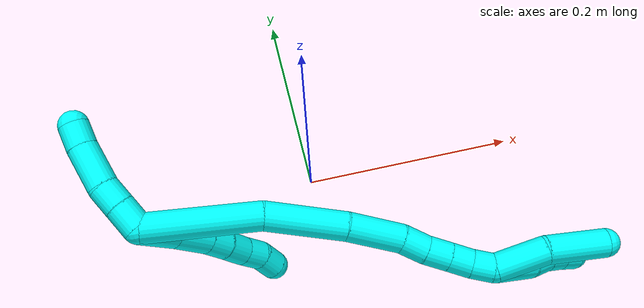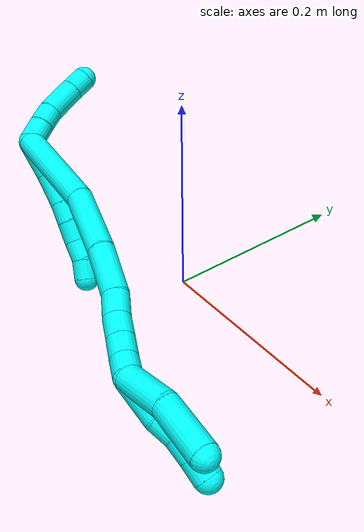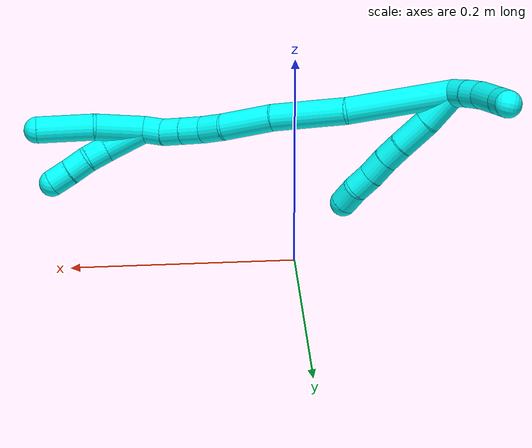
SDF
<sdf version="1.7">
 <world name="default">
  <model name="photoneo_s_sensor">
   <static>1</static>
   <pose>0 0 2 1.57079 1.57079 3.14159</pose>
   <link name="link">
    <inertial><mass>0.1</mass></inertial>
    <sensor name="sensor" type="depth">
     <update_rate>30</update_rate>
     <camera>
      <horizontal_fov>1.22</horizontal_fov>
      <image><width>1920</width><height>1200</height><format>B8G8R8</format></image>
      <clip><near>0.1</near><far>4</far></clip>
      <depth_camera><output>points</output></depth_camera>
     </camera>
     <plugin name="camera_plugin" filename="libgazebo_ros_depth_camera.so">
      <baseline>0.2</baseline>
      <alwaysOn>1</alwaysOn>
      <updateRate>0.0</updateRate>
      <cameraName>camera_ir</cameraName>
      <imageTopicName>/camera/color/image_raw</imageTopicName>
      <cameraInfoTopicName>/camera/color/camera_info</cameraInfoTopicName>
      <depthImageTopicName>/camera/depth/image_raw</depthImageTopicName>
      <depthImageCameraInfoTopicName>/camera/depth/camera_info</depthImageCameraInfoTopicName>
      <pointCloudTopicName>/camera/depth/points</pointCloudTopicName>
      <frameName>fr_optical</frameName>
      <pointCloudCutoff>0.1</pointCloudCutoff>
      <pointCloudCutoffMax>2.0</pointCloudCutoffMax>
      <distortionK1>0</distortionK1>
      <distortionK2>0</distortionK2>
      <distortionK3>0</distortionK3>
      <distortionT1>0</distortionT1>
      <distortionT2>0</distortionT2>
      <CxPrime>0</CxPrime>
      <Cx>0</Cx>
      <Cy>0</Cy>
      <focalLength>0</focalLength>
      <hackBaseline>0</hackBaseline>
     </plugin>
    </sensor>
   </link>
  </model>
  <model name="bin">
   <static>1</static>
   <link name="bottom">
    <collision name="collision-bottom">
     <pose>0 0 -0.01 0 -0 0</pose>
     <geometry><box><size>0.8 0.6 0.02</size></box></geometry>
     <surface>
      <friction><ode><mu>100</mu><mu2>100</mu2></ode></friction>
      <contact><collide_bitmask>65535</collide_bitmask></contact>
     </surface>
    </collision>
   </link>
   <link name="west_wall">
    <collision name="collision-west_wall">
     <pose>-0.41 0 0.1 0 -0 0</pose>
     <geometry><box><size>0.02 0.6 0.2</size></box></geometry>
     <surface>
      <friction><ode><mu>100</mu><mu2>100</mu2></ode></friction>
      <contact><collide_bitmask>65535</collide_bitmask></contact>
     </surface>
    </collision>
   </link>
   <link name="east_wall">
    <collision name="collision-east_wall">
     <pose>0.41 0 0.1 0 -0 0</pose>
     <geometry><box><size>0.02 0.6 0.2</size></box></geometry>
     <surface>
      <friction><ode><mu>100</mu><mu2>100</mu2></ode></friction>
      <contact><collide_bitmask>65535</collide_bitmask></contact>
     </surface>
    </collision>
   </link>
   <link name="south_wall">
    <collision name="collision-south_wall">
     <pose>0 -0.31 0.1 0 -0 0</pose>
     <geometry><box><size>0.8 0.02 0.2</size></box></geometry>
     <surface>
      <friction><ode><mu>100</mu><mu2>100</mu2></ode></friction>
      <contact><collide_bitmask>65535</collide_bitmask></contact>
     </surface>
    </collision>
   </link>
   <link name="north_wall">
    <collision name="collision-north_wall">
     <pose>0 0.31 0.1 0 -0 0</pose>
     <geometry><box><size>0.8 0.02 0.2</size></box></geometry>
     <surface>
      <friction><ode><mu>100</mu><mu2>100</mu2></ode></friction>
      <contact><collide_bitmask>65535</collide_bitmask></contact>
     </surface>
    </collision>
   </link>
  </model>
  <model name="3">
   <static>0</static>
   <link name="3">
    <collision name="collision-cylinder-e_1_2_8">
     <pose>0.012709 0.009566 0.008769 -0.828827 0.774953 -0.35526</pose>
     <geometry><cylinder><radius>0.0125</radius><length>0.036327</length></cylinder></geometry>
     <surface>
      <friction><ode><mu>1.16</mu><mu2>1.16</mu2><slip1>0</slip1><slip2>0</slip2></ode></friction>
      <contact><ode><kp>1e+06</kp><kd>1</kd><max_vel>0</max_vel><min_depth>0.001</min_depth></ode></contact>
     </surface>
    </collision>
    <visual name="visual-cylinder-e_1_2_8">
     <pose>0.012709 0.009566 0.008769 -0.828827 0.774953 -0.35526</pose>
     <geometry><cylinder><radius>0.0125</radius><length>0.036327</length></cylinder></geometry>
     <material><ambient>0.003922 1 0.996078 1</ambient></material>
    </visual>
    <collision name="collision-cylinder-e_2_8_9">
     <pose>0.036829 0.026009 0.026573 -0.650671 0.787899 -0.278619</pose>
     <geometry><cylinder><radius>0.0125</radius><length>0.032196</length></cylinder></geometry>
     <surface>
      <friction><ode><mu>1.16</mu><mu2>1.16</mu2><slip1>0</slip1><slip2>0</slip2></ode></friction>
      <contact><ode><kp>1e+06</kp><kd>1</kd><max_vel>0</max_vel><min_depth>0.001</min_depth></ode></contact>
     </surface>
    </collision>
    <visual name="visual-cylinder-e_2_8_9">
     <pose>0.036829 0.026009 0.026573 -0.650671 0.787899 -0.278619</pose>
     <geometry><cylinder><radius>0.0125</radius><length>0.032196</length></cylinder></geometry>
     <material><ambient>0.003922 1 0.996078 1</ambient></material>
    </visual>
    <collision name="collision-cylinder-e_3_9_10">
     <pose>0.05612 0.036651 0.040888 -0.619153 0.882158 -0.299747</pose>
     <geometry><cylinder><radius>0.0125</radius><length>0.02041</length></cylinder></geometry>
     <surface>
      <friction><ode><mu>1.16</mu><mu2>1.16</mu2><slip1>0</slip1><slip2>0</slip2></ode></friction>
      <contact><ode><kp>1e+06</kp><kd>1</kd><max_vel>0</max_vel><min_depth>0.001</min_depth></ode></contact>
     </surface>
    </collision>
    <visual name="visual-cylinder-e_3_9_10">
     <pose>0.05612 0.036651 0.040888 -0.619153 0.882158 -0.299747</pose>
     <geometry><cylinder><radius>0.0125</radius><length>0.02041</length></cylinder></geometry>
     <material><ambient>0.003922 1 0.996078 1</ambient></material>
    </visual>
    <collision name="collision-cylinder-e_4_10_11">
     <pose>0.072333 0.044596 0.050905 -0.72349 0.922148 -0.371628</pose>
     <geometry><cylinder><radius>0.0125</radius><length>0.020915</length></cylinder></geometry>
     <surface>
      <friction><ode><mu>1.16</mu><mu2>1.16</mu2><slip1>0</slip1><slip2>0</slip2></ode></friction>
      <contact><ode><kp>1e+06</kp><kd>1</kd><max_vel>0</max_vel><min_depth>0.001</min_depth></ode></contact>
     </surface>
    </collision>
    <visual name="visual-cylinder-e_4_10_11">
     <pose>0.072333 0.044596 0.050905 -0.72349 0.922148 -0.371628</pose>
     <geometry><cylinder><radius>0.0125</radius><length>0.020915</length></cylinder></geometry>
     <material><ambient>0.003922 1 0.996078 1</ambient></material>
    </visual>
    <collision name="collision-cylinder-e_5_11_12">
     <pose>0.088146 0.05261 0.061127 -0.60947 0.840878 -0.279422</pose>
     <geometry><cylinder><radius>0.0125</radius><length>0.020072</length></cylinder></geometry>
     <surface>
      <friction><ode><mu>1.16</mu><mu2>1.16</mu2><slip1>0</slip1><slip2>0</slip2></ode></friction>
      <contact><ode><kp>1e+06</kp><kd>1</kd><max_vel>0</max_vel><min_depth>0.001</min_depth></ode></contact>
     </surface>
    </collision>
    <visual name="visual-cylinder-e_5_11_12">
     <pose>0.088146 0.05261 0.061127 -0.60947 0.840878 -0.279422</pose>
     <geometry><cylinder><radius>0.0125</radius><length>0.020072</length></cylinder></geometry>
     <material><ambient>0.003922 1 0.996078 1</ambient></material>
    </visual>
    <collision name="collision-cylinder-e_6_12_6">
     <pose>0.104656 0.058655 0.070399 -0.529325 1.11879 -0.336174</pose>
     <geometry><cylinder><radius>0.0125</radius><length>0.02008</length></cylinder></geometry>
     <surface>
      <friction><ode><mu>1.16</mu><mu2>1.16</mu2><slip1>0</slip1><slip2>0</slip2></ode></friction>
      <contact><ode><kp>1e+06</kp><kd>1</kd><max_vel>0</max_vel><min_depth>0.001</min_depth></ode></contact>
     </surface>
    </collision>
    <visual name="visual-cylinder-e_6_12_6">
     <pose>0.104656 0.058655 0.070399 -0.529325 1.11879 -0.336174</pose>
     <geometry><cylinder><radius>0.0125</radius><length>0.02008</length></cylinder></geometry>
     <material><ambient>0.003922 1 0.996078 1</ambient></material>
    </visual>
    <collision name="collision-cylinder-e_1_2_13">
     <pose>-0.008311 0.005442 -0.005623 -2.37256 -0.8155 1.63604</pose>
     <geometry><cylinder><radius>0.0125</radius><length>0.022829</length></cylinder></geometry>
     <surface>
      <friction><ode><mu>1.16</mu><mu2>1.16</mu2><slip1>0</slip1><slip2>0</slip2></ode></friction>
      <contact><ode><kp>1e+06</kp><kd>1</kd><max_vel>0</max_vel><min_depth>0.001</min_depth></ode></contact>
     </surface>
    </collision>
    <visual name="visual-cylinder-e_1_2_13">
     <pose>-0.008311 0.005442 -0.005623 -2.37256 -0.8155 1.63604</pose>
     <geometry><cylinder><radius>0.0125</radius><length>0.022829</length></cylinder></geometry>
     <material><ambient>0.003922 1 0.996078 1</ambient></material>
    </visual>
    <collision name="collision-cylinder-e_2_13_14">
     <pose>-0.023723 0.016065 -0.016424 -2.35585 -0.769861 1.54816</pose>
     <geometry><cylinder><radius>0.0125</radius><length>0.020406</length></cylinder></geometry>
     <surface>
      <friction><ode><mu>1.16</mu><mu2>1.16</mu2><slip1>0</slip1><slip2>0</slip2></ode></friction>
      <contact><ode><kp>1e+06</kp><kd>1</kd><max_vel>0</max_vel><min_depth>0.001</min_depth></ode></contact>
     </surface>
    </collision>
    <visual name="visual-cylinder-e_2_13_14">
     <pose>-0.023723 0.016065 -0.016424 -2.35585 -0.769861 1.54816</pose>
     <geometry><cylinder><radius>0.0125</radius><length>0.020406</length></cylinder></geometry>
     <material><ambient>0.003922 1 0.996078 1</ambient></material>
    </visual>
    <collision name="collision-cylinder-e_3_14_15">
     <pose>-0.043548 0.032839 -0.028017 -2.07626 -0.765169 1.19794</pose>
     <geometry><cylinder><radius>0.0125</radius><length>0.036737</length></cylinder></geometry>
     <surface>
      <friction><ode><mu>1.16</mu><mu2>1.16</mu2><slip1>0</slip1><slip2>0</slip2></ode></friction>
      <contact><ode><kp>1e+06</kp><kd>1</kd><max_vel>0</max_vel><min_depth>0.001</min_depth></ode></contact>
     </surface>
    </collision>
    <visual name="visual-cylinder-e_3_14_15">
     <pose>-0.043548 0.032839 -0.028017 -2.07626 -0.765169 1.19794</pose>
     <geometry><cylinder><radius>0.0125</radius><length>0.036737</length></cylinder></geometry>
     <material><ambient>0.003922 1 0.996078 1</ambient></material>
    </visual>
    <collision name="collision-cylinder-e_4_15_5">
     <pose>-0.063524 0.0509 -0.036844 -1.92767 -0.810054 1.10624</pose>
     <geometry><cylinder><radius>0.0125</radius><length>0.020028</length></cylinder></geometry>
     <surface>
      <friction><ode><mu>1.16</mu><mu2>1.16</mu2><slip1>0</slip1><slip2>0</slip2></ode></friction>
      <contact><ode><kp>1e+06</kp><kd>1</kd><max_vel>0</max_vel><min_depth>0.001</min_depth></ode></contact>
     </surface>
    </collision>
    <visual name="visual-cylinder-e_4_15_5">
     <pose>-0.063524 0.0509 -0.036844 -1.92767 -0.810054 1.10624</pose>
     <geometry><cylinder><radius>0.0125</radius><length>0.020028</length></cylinder></geometry>
     <material><ambient>0.003922 1 0.996078 1</ambient></material>
    </visual>
    <collision name="collision-cylinder-e_1_2_16">
     <pose>0.01402 0.011108 0.045668 -0.238591 0.28989 -0.034989</pose>
     <geometry><cylinder><radius>0.0125</radius><length>0.098092</length></cylinder></geometry>
     <surface>
      <friction><ode><mu>1.16</mu><mu2>1.16</mu2><slip1>0</slip1><slip2>0</slip2></ode></friction>
      <contact><ode><kp>1e+06</kp><kd>1</kd><max_vel>0</max_vel><min_depth>0.001</min_depth></ode></contact>
     </surface>
    </collision>
    <visual name="visual-cylinder-e_1_2_16">
     <pose>0.01402 0.011108 0.045668 -0.238591 0.28989 -0.034989</pose>
     <geometry><cylinder><radius>0.0125</radius><length>0.098092</length></cylinder></geometry>
     <material><ambient>0.003922 1 0.996078 1</ambient></material>
    </visual>
    <collision name="collision-cylinder-e_2_16_17">
     <pose>0.042491 0.022985 0.122966 -0.02432 0.428468 -0.005292</pose>
     <geometry><cylinder><radius>0.0125</radius><length>0.069567</length></cylinder></geometry>
     <surface>
      <friction><ode><mu>1.16</mu><mu2>1.16</mu2><slip1>0</slip1><slip2>0</slip2></ode></friction>
      <contact><ode><kp>1e+06</kp><kd>1</kd><max_vel>0</max_vel><min_depth>0.001</min_depth></ode></contact>
     </surface>
    </collision>
    <visual name="visual-cylinder-e_2_16_17">
     <pose>0.042491 0.022985 0.122966 -0.02432 0.428468 -0.005292</pose>
     <geometry><cylinder><radius>0.0125</radius><length>0.069567</length></cylinder></geometry>
     <material><ambient>0.003922 1 0.996078 1</ambient></material>
    </visual>
    <collision name="collision-cylinder-e_3_17_18">
     <pose>0.069664 0.024653 0.175164 -0.0437 0.553468 -0.012414</pose>
     <geometry><cylinder><radius>0.0125</radius><length>0.048401</length></cylinder></geometry>
     <surface>
      <friction><ode><mu>1.16</mu><mu2>1.16</mu2><slip1>0</slip1><slip2>0</slip2></ode></friction>
      <contact><ode><kp>1e+06</kp><kd>1</kd><max_vel>0</max_vel><min_depth>0.001</min_depth></ode></contact>
     </surface>
    </collision>
    <visual name="visual-cylinder-e_3_17_18">
     <pose>0.069664 0.024653 0.175164 -0.0437 0.553468 -0.012414</pose>
     <geometry><cylinder><radius>0.0125</radius><length>0.048401</length></cylinder></geometry>
     <material><ambient>0.003922 1 0.996078 1</ambient></material>
    </visual>
    <collision name="collision-cylinder-e_4_18_19">
     <pose>0.089474 0.023987 0.204426 0.178235 0.676325 0.062826</pose>
     <geometry><cylinder><radius>0.0125</radius><length>0.022653</length></cylinder></geometry>
     <surface>
      <friction><ode><mu>1.16</mu><mu2>1.16</mu2><slip1>0</slip1><slip2>0</slip2></ode></friction>
      <contact><ode><kp>1e+06</kp><kd>1</kd><max_vel>0</max_vel><min_depth>0.001</min_depth></ode></contact>
     </surface>
    </collision>
    <visual name="visual-cylinder-e_4_18_19">
     <pose>0.089474 0.023987 0.204426 0.178235 0.676325 0.062826</pose>
     <geometry><cylinder><radius>0.0125</radius><length>0.022653</length></cylinder></geometry>
     <material><ambient>0.003922 1 0.996078 1</ambient></material>
    </visual>
    <collision name="collision-cylinder-e_5_19_20">
     <pose>0.101991 0.021388 0.222122 0.114165 0.539577 0.031602</pose>
     <geometry><cylinder><radius>0.0125</radius><length>0.021125</length></cylinder></geometry>
     <surface>
      <friction><ode><mu>1.16</mu><mu2>1.16</mu2><slip1>0</slip1><slip2>0</slip2></ode></friction>
      <contact><ode><kp>1e+06</kp><kd>1</kd><max_vel>0</max_vel><min_depth>0.001</min_depth></ode></contact>
     </surface>
    </collision>
    <visual name="visual-cylinder-e_5_19_20">
     <pose>0.101991 0.021388 0.222122 0.114165 0.539577 0.031602</pose>
     <geometry><cylinder><radius>0.0125</radius><length>0.021125</length></cylinder></geometry>
     <material><ambient>0.003922 1 0.996078 1</ambient></material>
    </visual>
    <collision name="collision-cylinder-e_6_20_21">
     <pose>0.112599 0.019313 0.239674 0.121419 0.541609 0.033747</pose>
     <geometry><cylinder><radius>0.0125</radius><length>0.020103</length></cylinder></geometry>
     <surface>
      <friction><ode><mu>1.16</mu><mu2>1.16</mu2><slip1>0</slip1><slip2>0</slip2></ode></friction>
      <contact><ode><kp>1e+06</kp><kd>1</kd><max_vel>0</max_vel><min_depth>0.001</min_depth></ode></contact>
     </surface>
    </collision>
    <visual name="visual-cylinder-e_6_20_21">
     <pose>0.112599 0.019313 0.239674 0.121419 0.541609 0.033747</pose>
     <geometry><cylinder><radius>0.0125</radius><length>0.020103</length></cylinder></geometry>
     <material><ambient>0.003922 1 0.996078 1</ambient></material>
    </visual>
    <collision name="collision-cylinder-e_7_21_1">
     <pose>0.121111 0.016354 0.257488 0.203883 0.33848 0.034956</pose>
     <geometry><cylinder><radius>0.0125</radius><length>0.020058</length></cylinder></geometry>
     <surface>
      <friction><ode><mu>1.16</mu><mu2>1.16</mu2><slip1>0</slip1><slip2>0</slip2></ode></friction>
      <contact><ode><kp>1e+06</kp><kd>1</kd><max_vel>0</max_vel><min_depth>0.001</min_depth></ode></contact>
     </surface>
    </collision>
    <visual name="visual-cylinder-e_7_21_1">
     <pose>0.121111 0.016354 0.257488 0.203883 0.33848 0.034956</pose>
     <geometry><cylinder><radius>0.0125</radius><length>0.020058</length></cylinder></geometry>
     <material><ambient>0.003922 1 0.996078 1</ambient></material>
    </visual>
    <collision name="collision-cylinder-e_1_1_22">
     <pose>0.133727 0.022918 0.282263 -0.500283 0.483665 -0.125873</pose>
     <geometry><cylinder><radius>0.0125</radius><length>0.039934</length></cylinder></geometry>
     <surface>
      <friction><ode><mu>1.16</mu><mu2>1.16</mu2><slip1>0</slip1><slip2>0</slip2></ode></friction>
      <contact><ode><kp>1e+06</kp><kd>1</kd><max_vel>0</max_vel><min_depth>0.001</min_depth></ode></contact>
     </surface>
    </collision>
    <visual name="visual-cylinder-e_1_1_22">
     <pose>0.133727 0.022918 0.282263 -0.500283 0.483665 -0.125873</pose>
     <geometry><cylinder><radius>0.0125</radius><length>0.039934</length></cylinder></geometry>
     <material><ambient>0.003922 1 0.996078 1</ambient></material>
    </visual>
    <collision name="collision-cylinder-e_2_22_23">
     <pose>0.14614 0.037073 0.305407 -0.639327 0.317717 -0.105964</pose>
     <geometry><cylinder><radius>0.0125</radius><length>0.020027</length></cylinder></geometry>
     <surface>
      <friction><ode><mu>1.16</mu><mu2>1.16</mu2><slip1>0</slip1><slip2>0</slip2></ode></friction>
      <contact><ode><kp>1e+06</kp><kd>1</kd><max_vel>0</max_vel><min_depth>0.001</min_depth></ode></contact>
     </surface>
    </collision>
    <visual name="visual-cylinder-e_2_22_23">
     <pose>0.14614 0.037073 0.305407 -0.639327 0.317717 -0.105964</pose>
     <geometry><cylinder><radius>0.0125</radius><length>0.020027</length></cylinder></geometry>
     <material><ambient>0.003922 1 0.996078 1</ambient></material>
    </visual>
    <collision name="collision-cylinder-e_3_23_24">
     <pose>0.154594 0.047748 0.319896 -0.630119 0.560476 -0.187057</pose>
     <geometry><cylinder><radius>0.0125</radius><length>0.020037</length></cylinder></geometry>
     <surface>
      <friction><ode><mu>1.16</mu><mu2>1.16</mu2><slip1>0</slip1><slip2>0</slip2></ode></friction>
      <contact><ode><kp>1e+06</kp><kd>1</kd><max_vel>0</max_vel><min_depth>0.001</min_depth></ode></contact>
     </surface>
    </collision>
    <visual name="visual-cylinder-e_3_23_24">
     <pose>0.154594 0.047748 0.319896 -0.630119 0.560476 -0.187057</pose>
     <geometry><cylinder><radius>0.0125</radius><length>0.020037</length></cylinder></geometry>
     <material><ambient>0.003922 1 0.996078 1</ambient></material>
    </visual>
    <collision name="collision-cylinder-e_4_24_4">
     <pose>0.165398 0.057223 0.333822 -0.564241 0.579754 -0.172484</pose>
     <geometry><cylinder><radius>0.0125</radius><length>0.020002</length></cylinder></geometry>
     <surface>
      <friction><ode><mu>1.16</mu><mu2>1.16</mu2><slip1>0</slip1><slip2>0</slip2></ode></friction>
      <contact><ode><kp>1e+06</kp><kd>1</kd><max_vel>0</max_vel><min_depth>0.001</min_depth></ode></contact>
     </surface>
    </collision>
    <visual name="visual-cylinder-e_4_24_4">
     <pose>0.165398 0.057223 0.333822 -0.564241 0.579754 -0.172484</pose>
     <geometry><cylinder><radius>0.0125</radius><length>0.020002</length></cylinder></geometry>
     <material><ambient>0.003922 1 0.996078 1</ambient></material>
    </visual>
    <collision name="collision-cylinder-e_1_1_25">
     <pose>0.123979 0.019022 0.289588 -0.198077 -0.019861 0.001974</pose>
     <geometry><cylinder><radius>0.0125</radius><length>0.046592</length></cylinder></geometry>
     <surface>
      <friction><ode><mu>1.16</mu><mu2>1.16</mu2><slip1>0</slip1><slip2>0</slip2></ode></friction>
      <contact><ode><kp>1e+06</kp><kd>1</kd><max_vel>0</max_vel><min_depth>0.001</min_depth></ode></contact>
     </surface>
    </collision>
    <visual name="visual-cylinder-e_1_1_25">
     <pose>0.123979 0.019022 0.289588 -0.198077 -0.019861 0.001974</pose>
     <geometry><cylinder><radius>0.0125</radius><length>0.046592</length></cylinder></geometry>
     <material><ambient>0.003922 1 0.996078 1</ambient></material>
    </visual>
    <collision name="collision-cylinder-e_2_25_3">
     <pose>0.12932 0.027373 0.338216 -0.145063 0.219079 -0.015982</pose>
     <geometry><cylinder><radius>0.0125</radius><length>0.053408</length></cylinder></geometry>
     <surface>
      <friction><ode><mu>1.16</mu><mu2>1.16</mu2><slip1>0</slip1><slip2>0</slip2></ode></friction>
      <contact><ode><kp>1e+06</kp><kd>1</kd><max_vel>0</max_vel><min_depth>0.001</min_depth></ode></contact>
     </surface>
    </collision>
    <visual name="visual-cylinder-e_2_25_3">
     <pose>0.12932 0.027373 0.338216 -0.145063 0.219079 -0.015982</pose>
     <geometry><cylinder><radius>0.0125</radius><length>0.053408</length></cylinder></geometry>
     <material><ambient>0.003922 1 0.996078 1</ambient></material>
    </visual>
    <collision name="collision-sphere-3">
     <pose>0.135123 0.031141 0.364008 0 -0 0</pose>
     <geometry><sphere><radius>0.0125</radius></sphere></geometry>
     <surface>
      <friction><ode><mu>1.16</mu><mu2>1.16</mu2><slip1>0</slip1><slip2>0</slip2></ode></friction>
      <contact><ode><kp>1e+06</kp><kd>1</kd><max_vel>0</max_vel><min_depth>0.001</min_depth></ode></contact>
     </surface>
    </collision>
    <visual name="visual-sphere-3">
     <pose>0.135123 0.031141 0.364008 0 -0 0</pose>
     <geometry><sphere><radius>0.0125</radius></sphere></geometry>
     <material><ambient>0.003922 1 0.996078 1</ambient></material>
    </visual>
    <collision name="collision-sphere-25">
     <pose>0.123516 0.023605 0.312424 0 -0 0</pose>
     <geometry><sphere><radius>0.0125</radius></sphere></geometry>
     <surface>
      <friction><ode><mu>1.16</mu><mu2>1.16</mu2><slip1>0</slip1><slip2>0</slip2></ode></friction>
      <contact><ode><kp>1e+06</kp><kd>1</kd><max_vel>0</max_vel><min_depth>0.001</min_depth></ode></contact>
     </surface>
    </collision>
    <visual name="visual-sphere-25">
     <pose>0.123516 0.023605 0.312424 0 -0 0</pose>
     <geometry><sphere><radius>0.0125</radius></sphere></geometry>
     <material><ambient>0.003922 1 0.996078 1</ambient></material>
    </visual>
    <collision name="collision-sphere-4">
     <pose>0.170877 0.061697 0.340892 0 -0 0</pose>
     <geometry><sphere><radius>0.0125</radius></sphere></geometry>
     <surface>
      <friction><ode><mu>1.16</mu><mu2>1.16</mu2><slip1>0</slip1><slip2>0</slip2></ode></friction>
      <contact><ode><kp>1e+06</kp><kd>1</kd><max_vel>0</max_vel><min_depth>0.001</min_depth></ode></contact>
     </surface>
    </collision>
    <visual name="visual-sphere-4">
     <pose>0.170877 0.061697 0.340892 0 -0 0</pose>
     <geometry><sphere><radius>0.0125</radius></sphere></geometry>
     <material><ambient>0.003922 1 0.996078 1</ambient></material>
    </visual>
    <collision name="collision-sphere-24">
     <pose>0.15992 0.052748 0.326752 0 -0 0</pose>
     <geometry><sphere><radius>0.0125</radius></sphere></geometry>
     <surface>
      <friction><ode><mu>1.16</mu><mu2>1.16</mu2><slip1>0</slip1><slip2>0</slip2></ode></friction>
      <contact><ode><kp>1e+06</kp><kd>1</kd><max_vel>0</max_vel><min_depth>0.001</min_depth></ode></contact>
     </surface>
    </collision>
    <visual name="visual-sphere-24">
     <pose>0.15992 0.052748 0.326752 0 -0 0</pose>
     <geometry><sphere><radius>0.0125</radius></sphere></geometry>
     <material><ambient>0.003922 1 0.996078 1</ambient></material>
    </visual>
    <collision name="collision-sphere-23">
     <pose>0.149268 0.042748 0.31304 0 -0 0</pose>
     <geometry><sphere><radius>0.0125</radius></sphere></geometry>
     <surface>
      <friction><ode><mu>1.16</mu><mu2>1.16</mu2><slip1>0</slip1><slip2>0</slip2></ode></friction>
      <contact><ode><kp>1e+06</kp><kd>1</kd><max_vel>0</max_vel><min_depth>0.001</min_depth></ode></contact>
     </surface>
    </collision>
    <visual name="visual-sphere-23">
     <pose>0.149268 0.042748 0.31304 0 -0 0</pose>
     <geometry><sphere><radius>0.0125</radius></sphere></geometry>
     <material><ambient>0.003922 1 0.996078 1</ambient></material>
    </visual>
    <collision name="collision-sphere-22">
     <pose>0.143012 0.031397 0.297773 0 -0 0</pose>
     <geometry><sphere><radius>0.0125</radius></sphere></geometry>
     <surface>
      <friction><ode><mu>1.16</mu><mu2>1.16</mu2><slip1>0</slip1><slip2>0</slip2></ode></friction>
      <contact><ode><kp>1e+06</kp><kd>1</kd><max_vel>0</max_vel><min_depth>0.001</min_depth></ode></contact>
     </surface>
    </collision>
    <visual name="visual-sphere-22">
     <pose>0.143012 0.031397 0.297773 0 -0 0</pose>
     <geometry><sphere><radius>0.0125</radius></sphere></geometry>
     <material><ambient>0.003922 1 0.996078 1</ambient></material>
    </visual>
    <collision name="collision-sphere-1">
     <pose>0.124441 0.014439 0.266752 0 -0 0</pose>
     <geometry><sphere><radius>0.0125</radius></sphere></geometry>
     <surface>
      <friction><ode><mu>1.16</mu><mu2>1.16</mu2><slip1>0</slip1><slip2>0</slip2></ode></friction>
      <contact><ode><kp>1e+06</kp><kd>1</kd><max_vel>0</max_vel><min_depth>0.001</min_depth></ode></contact>
     </surface>
    </collision>
    <visual name="visual-sphere-1">
     <pose>0.124441 0.014439 0.266752 0 -0 0</pose>
     <geometry><sphere><radius>0.0125</radius></sphere></geometry>
     <material><ambient>0.003922 1 0.996078 1</ambient></material>
    </visual>
    <collision name="collision-sphere-21">
     <pose>0.117781 0.01827 0.248224 0 -0 0</pose>
     <geometry><sphere><radius>0.0125</radius></sphere></geometry>
     <surface>
      <friction><ode><mu>1.16</mu><mu2>1.16</mu2><slip1>0</slip1><slip2>0</slip2></ode></friction>
      <contact><ode><kp>1e+06</kp><kd>1</kd><max_vel>0</max_vel><min_depth>0.001</min_depth></ode></contact>
     </surface>
    </collision>
    <visual name="visual-sphere-21">
     <pose>0.117781 0.01827 0.248224 0 -0 0</pose>
     <geometry><sphere><radius>0.0125</radius></sphere></geometry>
     <material><ambient>0.003922 1 0.996078 1</ambient></material>
    </visual>
    <collision name="collision-sphere-12">
     <pose>0.095625 0.05644 0.066614 0 -0 0</pose>
     <geometry><sphere><radius>0.0125</radius></sphere></geometry>
     <surface>
      <friction><ode><mu>1.16</mu><mu2>1.16</mu2><slip1>0</slip1><slip2>0</slip2></ode></friction>
      <contact><ode><kp>1e+06</kp><kd>1</kd><max_vel>0</max_vel><min_depth>0.001</min_depth></ode></contact>
     </surface>
    </collision>
    <visual name="visual-sphere-12">
     <pose>0.095625 0.05644 0.066614 0 -0 0</pose>
     <geometry><sphere><radius>0.0125</radius></sphere></geometry>
     <material><ambient>0.003922 1 0.996078 1</ambient></material>
    </visual>
    <collision name="collision-sphere-11">
     <pose>0.080666 0.048779 0.05564 0 -0 0</pose>
     <geometry><sphere><radius>0.0125</radius></sphere></geometry>
     <surface>
      <friction><ode><mu>1.16</mu><mu2>1.16</mu2><slip1>0</slip1><slip2>0</slip2></ode></friction>
      <contact><ode><kp>1e+06</kp><kd>1</kd><max_vel>0</max_vel><min_depth>0.001</min_depth></ode></contact>
     </surface>
    </collision>
    <visual name="visual-sphere-11">
     <pose>0.080666 0.048779 0.05564 0 -0 0</pose>
     <geometry><sphere><radius>0.0125</radius></sphere></geometry>
     <material><ambient>0.003922 1 0.996078 1</ambient></material>
    </visual>
    <collision name="collision-sphere-10">
     <pose>0.063999 0.040414 0.04617 0 -0 0</pose>
     <geometry><sphere><radius>0.0125</radius></sphere></geometry>
     <surface>
      <friction><ode><mu>1.16</mu><mu2>1.16</mu2><slip1>0</slip1><slip2>0</slip2></ode></friction>
      <contact><ode><kp>1e+06</kp><kd>1</kd><max_vel>0</max_vel><min_depth>0.001</min_depth></ode></contact>
     </surface>
    </collision>
    <visual name="visual-sphere-10">
     <pose>0.063999 0.040414 0.04617 0 -0 0</pose>
     <geometry><sphere><radius>0.0125</radius></sphere></geometry>
     <material><ambient>0.003922 1 0.996078 1</ambient></material>
    </visual>
    <collision name="collision-sphere-9">
     <pose>0.04824 0.032887 0.035607 0 -0 0</pose>
     <geometry><sphere><radius>0.0125</radius></sphere></geometry>
     <surface>
      <friction><ode><mu>1.16</mu><mu2>1.16</mu2><slip1>0</slip1><slip2>0</slip2></ode></friction>
      <contact><ode><kp>1e+06</kp><kd>1</kd><max_vel>0</max_vel><min_depth>0.001</min_depth></ode></contact>
     </surface>
    </collision>
    <visual name="visual-sphere-9">
     <pose>0.04824 0.032887 0.035607 0 -0 0</pose>
     <geometry><sphere><radius>0.0125</radius></sphere></geometry>
     <material><ambient>0.003922 1 0.996078 1</ambient></material>
    </visual>
    <collision name="collision-sphere-2">
     <geometry><sphere><radius>0.0125</radius></sphere></geometry>
     <surface>
      <friction><ode><mu>1.16</mu><mu2>1.16</mu2><slip1>0</slip1><slip2>0</slip2></ode></friction>
      <contact><ode><kp>1e+06</kp><kd>1</kd><max_vel>0</max_vel><min_depth>0.001</min_depth></ode></contact>
     </surface>
    </collision>
    <visual name="visual-sphere-2">
     <geometry><sphere><radius>0.0125</radius></sphere></geometry>
     <material><ambient>0.003922 1 0.996078 1</ambient></material>
    </visual>
    <collision name="collision-sphere-19">
     <pose>0.096564 0.022421 0.213119 0 -0 0</pose>
     <geometry><sphere><radius>0.0125</radius></sphere></geometry>
     <surface>
      <friction><ode><mu>1.16</mu><mu2>1.16</mu2><slip1>0</slip1><slip2>0</slip2></ode></friction>
      <contact><ode><kp>1e+06</kp><kd>1</kd><max_vel>0</max_vel><min_depth>0.001</min_depth></ode></contact>
     </surface>
    </collision>
    <visual name="visual-sphere-19">
     <pose>0.096564 0.022421 0.213119 0 -0 0</pose>
     <geometry><sphere><radius>0.0125</radius></sphere></geometry>
     <material><ambient>0.003922 1 0.996078 1</ambient></material>
    </visual>
    <collision name="collision-sphere-8">
     <pose>0.025418 0.019132 0.017538 0 -0 0</pose>
     <geometry><sphere><radius>0.0125</radius></sphere></geometry>
     <surface>
      <friction><ode><mu>1.16</mu><mu2>1.16</mu2><slip1>0</slip1><slip2>0</slip2></ode></friction>
      <contact><ode><kp>1e+06</kp><kd>1</kd><max_vel>0</max_vel><min_depth>0.001</min_depth></ode></contact>
     </surface>
    </collision>
    <visual name="visual-sphere-8">
     <pose>0.025418 0.019132 0.017538 0 -0 0</pose>
     <geometry><sphere><radius>0.0125</radius></sphere></geometry>
     <material><ambient>0.003922 1 0.996078 1</ambient></material>
    </visual>
    <collision name="collision-sphere-6">
     <pose>0.113688 0.060869 0.074184 0 -0 0</pose>
     <geometry><sphere><radius>0.0125</radius></sphere></geometry>
     <surface>
      <friction><ode><mu>1.16</mu><mu2>1.16</mu2><slip1>0</slip1><slip2>0</slip2></ode></friction>
      <contact><ode><kp>1e+06</kp><kd>1</kd><max_vel>0</max_vel><min_depth>0.001</min_depth></ode></contact>
     </surface>
    </collision>
    <visual name="visual-sphere-6">
     <pose>0.113688 0.060869 0.074184 0 -0 0</pose>
     <geometry><sphere><radius>0.0125</radius></sphere></geometry>
     <material><ambient>0.003922 1 0.996078 1</ambient></material>
    </visual>
    <collision name="collision-sphere-13">
     <pose>-0.016621 0.010883 -0.011246 0 -0 0</pose>
     <geometry><sphere><radius>0.0125</radius></sphere></geometry>
     <surface>
      <friction><ode><mu>1.16</mu><mu2>1.16</mu2><slip1>0</slip1><slip2>0</slip2></ode></friction>
      <contact><ode><kp>1e+06</kp><kd>1</kd><max_vel>0</max_vel><min_depth>0.001</min_depth></ode></contact>
     </surface>
    </collision>
    <visual name="visual-sphere-13">
     <pose>-0.016621 0.010883 -0.011246 0 -0 0</pose>
     <geometry><sphere><radius>0.0125</radius></sphere></geometry>
     <material><ambient>0.003922 1 0.996078 1</ambient></material>
    </visual>
    <collision name="collision-sphere-14">
     <pose>-0.030824 0.021247 -0.021602 0 -0 0</pose>
     <geometry><sphere><radius>0.0125</radius></sphere></geometry>
     <surface>
      <friction><ode><mu>1.16</mu><mu2>1.16</mu2><slip1>0</slip1><slip2>0</slip2></ode></friction>
      <contact><ode><kp>1e+06</kp><kd>1</kd><max_vel>0</max_vel><min_depth>0.001</min_depth></ode></contact>
     </surface>
    </collision>
    <visual name="visual-sphere-14">
     <pose>-0.030824 0.021247 -0.021602 0 -0 0</pose>
     <geometry><sphere><radius>0.0125</radius></sphere></geometry>
     <material><ambient>0.003922 1 0.996078 1</ambient></material>
    </visual>
    <collision name="collision-sphere-15">
     <pose>-0.056271 0.044431 -0.034432 0 -0 0</pose>
     <geometry><sphere><radius>0.0125</radius></sphere></geometry>
     <surface>
      <friction><ode><mu>1.16</mu><mu2>1.16</mu2><slip1>0</slip1><slip2>0</slip2></ode></friction>
      <contact><ode><kp>1e+06</kp><kd>1</kd><max_vel>0</max_vel><min_depth>0.001</min_depth></ode></contact>
     </surface>
    </collision>
    <visual name="visual-sphere-15">
     <pose>-0.056271 0.044431 -0.034432 0 -0 0</pose>
     <geometry><sphere><radius>0.0125</radius></sphere></geometry>
     <material><ambient>0.003922 1 0.996078 1</ambient></material>
    </visual>
    <collision name="collision-sphere-5">
     <pose>-0.070777 0.057369 -0.039256 0 -0 0</pose>
     <geometry><sphere><radius>0.0125</radius></sphere></geometry>
     <surface>
      <friction><ode><mu>1.16</mu><mu2>1.16</mu2><slip1>0</slip1><slip2>0</slip2></ode></friction>
      <contact><ode><kp>1e+06</kp><kd>1</kd><max_vel>0</max_vel><min_depth>0.001</min_depth></ode></contact>
     </surface>
    </collision>
    <visual name="visual-sphere-5">
     <pose>-0.070777 0.057369 -0.039256 0 -0 0</pose>
     <geometry><sphere><radius>0.0125</radius></sphere></geometry>
     <material><ambient>0.003922 1 0.996078 1</ambient></material>
    </visual>
    <collision name="collision-sphere-16">
     <pose>0.028039 0.022215 0.091336 0 -0 0</pose>
     <geometry><sphere><radius>0.0125</radius></sphere></geometry>
     <surface>
      <friction><ode><mu>1.16</mu><mu2>1.16</mu2><slip1>0</slip1><slip2>0</slip2></ode></friction>
      <contact><ode><kp>1e+06</kp><kd>1</kd><max_vel>0</max_vel><min_depth>0.001</min_depth></ode></contact>
     </surface>
    </collision>
    <visual name="visual-sphere-16">
     <pose>0.028039 0.022215 0.091336 0 -0 0</pose>
     <geometry><sphere><radius>0.0125</radius></sphere></geometry>
     <material><ambient>0.003922 1 0.996078 1</ambient></material>
    </visual>
    <collision name="collision-sphere-17">
     <pose>0.056943 0.023754 0.154596 0 -0 0</pose>
     <geometry><sphere><radius>0.0125</radius></sphere></geometry>
     <surface>
      <friction><ode><mu>1.16</mu><mu2>1.16</mu2><slip1>0</slip1><slip2>0</slip2></ode></friction>
      <contact><ode><kp>1e+06</kp><kd>1</kd><max_vel>0</max_vel><min_depth>0.001</min_depth></ode></contact>
     </surface>
    </collision>
    <visual name="visual-sphere-17">
     <pose>0.056943 0.023754 0.154596 0 -0 0</pose>
     <geometry><sphere><radius>0.0125</radius></sphere></geometry>
     <material><ambient>0.003922 1 0.996078 1</ambient></material>
    </visual>
    <collision name="collision-sphere-18">
     <pose>0.082385 0.025553 0.195732 0 -0 0</pose>
     <geometry><sphere><radius>0.0125</radius></sphere></geometry>
     <surface>
      <friction><ode><mu>1.16</mu><mu2>1.16</mu2><slip1>0</slip1><slip2>0</slip2></ode></friction>
      <contact><ode><kp>1e+06</kp><kd>1</kd><max_vel>0</max_vel><min_depth>0.001</min_depth></ode></contact>
     </surface>
    </collision>
    <visual name="visual-sphere-18">
     <pose>0.082385 0.025553 0.195732 0 -0 0</pose>
     <geometry><sphere><radius>0.0125</radius></sphere></geometry>
     <material><ambient>0.003922 1 0.996078 1</ambient></material>
    </visual>
    <collision name="collision-sphere-20">
     <pose>0.107417 0.020356 0.231125 0 -0 0</pose>
     <geometry><sphere><radius>0.0125</radius></sphere></geometry>
     <surface>
      <friction><ode><mu>1.16</mu><mu2>1.16</mu2><slip1>0</slip1><slip2>0</slip2></ode></friction>
      <contact><ode><kp>1e+06</kp><kd>1</kd><max_vel>0</max_vel><min_depth>0.001</min_depth></ode></contact>
     </surface>
    </collision>
    <visual name="visual-sphere-20">
     <pose>0.107417 0.020356 0.231125 0 -0 0</pose>
     <geometry><sphere><radius>0.0125</radius></sphere></geometry>
     <material><ambient>0.003922 1 0.996078 1</ambient></material>
    </visual>
    <inertial>
     <pose>0.064752 0.02597 0.141777 0 -0 0</pose>
     <mass>0.75</mass>
     <inertia>
      <ixx>0.000185</ixx>
      <ixy>0</ixy>
      <ixz>0</ixz>
      <iyy>0.000196</iyy>
      <iyz>0</iyz>
      <izz>-6.2e-05</izz>
     </inertia>
    </inertial>
   </link>
   <pose>-0.150156 -0.077879 0.123348 -1.13392 1.0924 -1.29697</pose>
  </model>
 </world>
</sdf>
